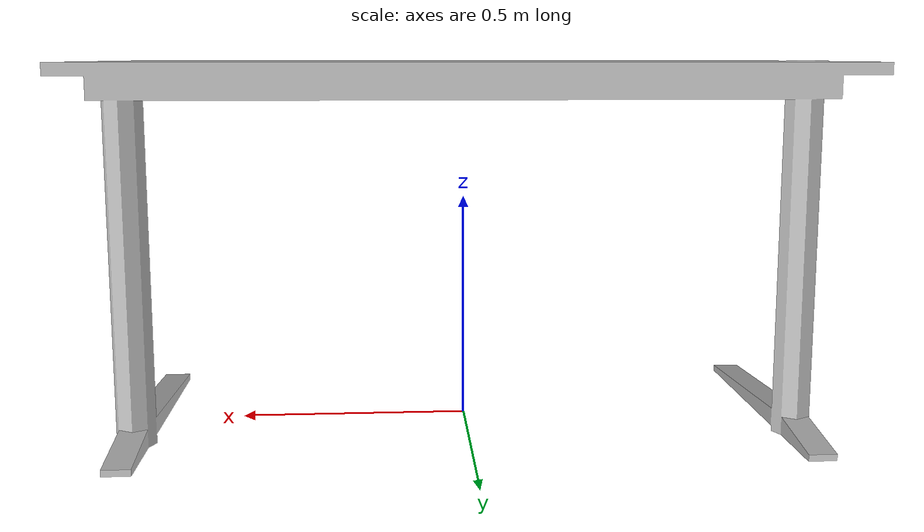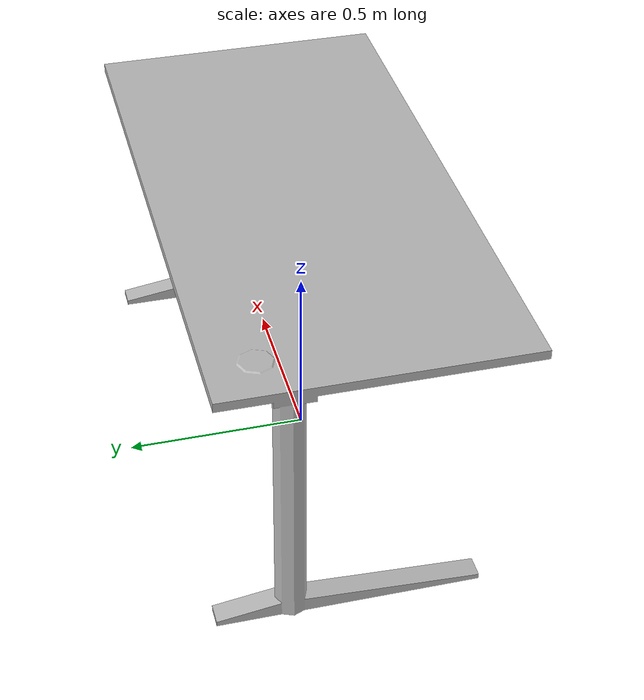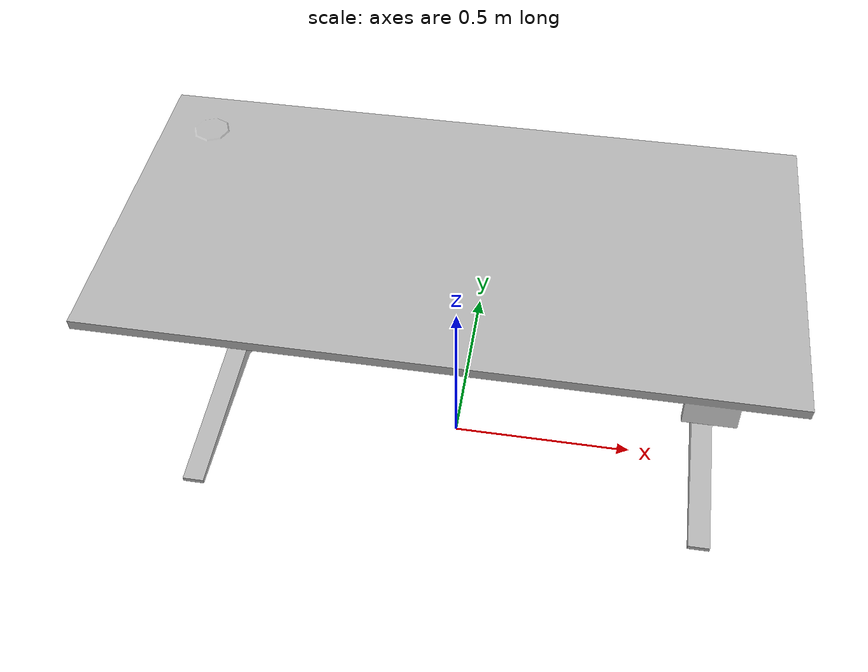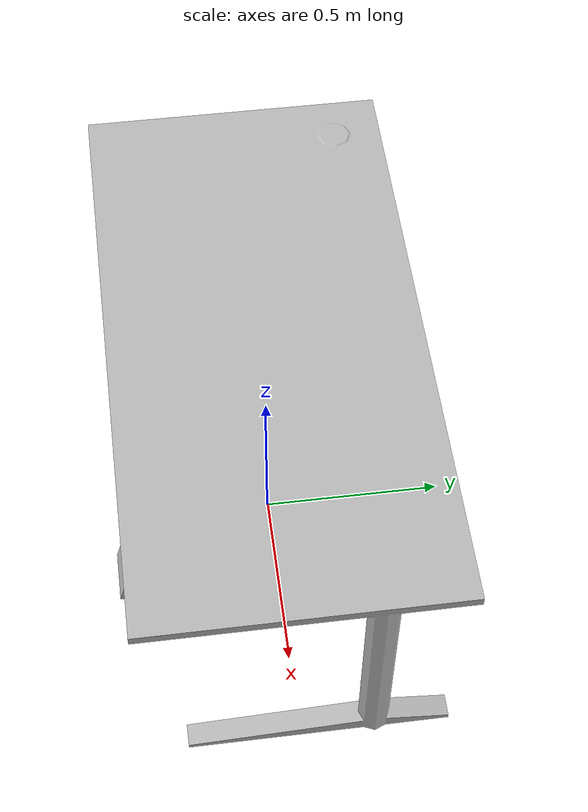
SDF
<?xml version='1.0' encoding='utf-8'?>
<sdf version="1.6">
  <model name="AdjTable">
   <static>true</static>
    <link name="body">
      <pose>0 0 0 0 0 0</pose>

      <visual name="visual">
        <geometry>
          <mesh>
            <uri>model://AdjTable/meshes/AdjTable.obj</uri>
          </mesh>
        </geometry>
      </visual>

      <collision name="collision">
        <geometry>
          <mesh>
            <uri>model://AdjTable/meshes/AdjTable_Col.obj</uri>
          </mesh>
        </geometry>
      </collision>

    </link>
     <plugin filename="gz-sim-label-system" name="gz::sim::systems::Label">
          <label>114</label>
        </plugin>
  </model>
</sdf>
